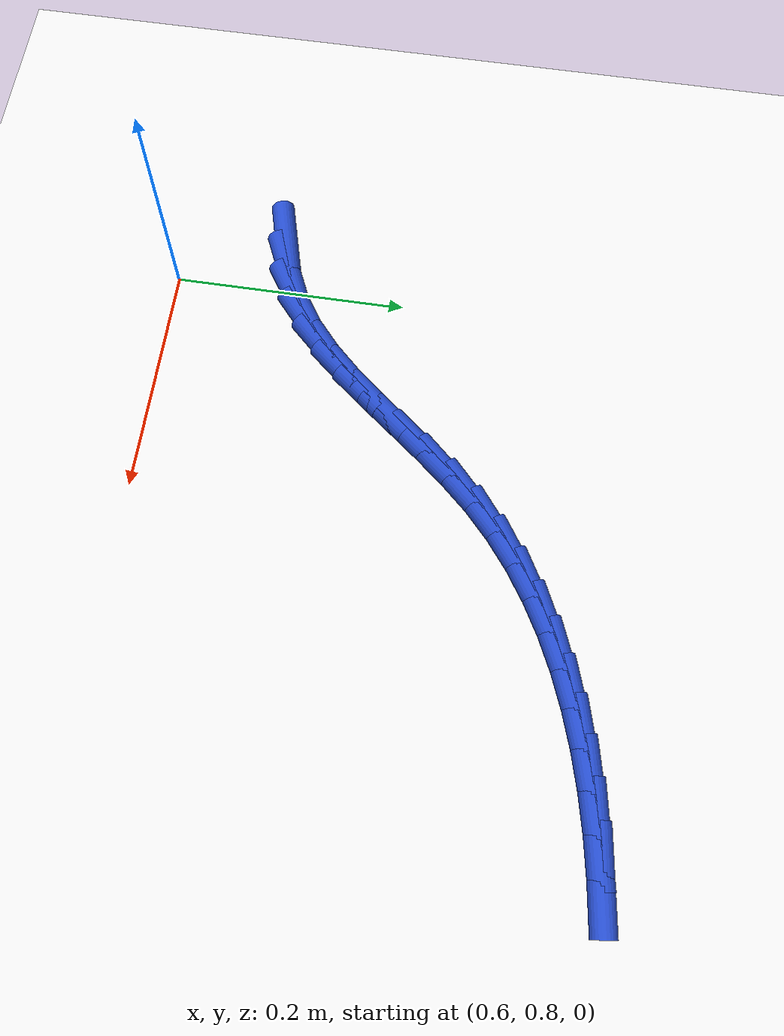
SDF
<sdf version="1.6">
 <world name="default">
  <model name="ground_plane">
   <static>1</static>
   <link name="link">
    <collision name="collision">
     <geometry><plane><normal>0 0 1</normal><size>100 100</size></plane></geometry>
     <surface><friction><ode><mu>100</mu><mu2>50</mu2></ode></friction></surface>
    </collision>
    <visual name="visual">
     <cast_shadows>0</cast_shadows>
     <geometry><plane><normal>0 0 1</normal><size>100 100</size></plane></geometry>
     <material>
      <script><uri>file://media/materials/scripts/gazebo.material</uri><name>Gazebo/WhiteGlow</name></script>
     </material>
    </visual>
   </link>
  </model>
  <model name="line">
   <link name="link_38">
    <pose>0.5573159056006951 0.8898360443929524 0.01 0 1.57 0.25675725050288645</pose>
    <collision name="collision">
     <geometry><cylinder><radius>0.01</radius><length>0.08</length></cylinder></geometry>
    </collision>
    <visual name="visual">
     <material>
      <script><name>Gazebo/Blue</name><uri>file://media/materials/scripts/gazebo.material</uri></script>
     </material>
     <geometry><cylinder><radius>0.01</radius><length>0.08</length></cylinder></geometry>
    </visual>
   </link>
   <link name="link_39">
    <pose>0.586419178341366 0.8974771753452274 0.01 0 1.57 0.4152905521539522</pose>
    <collision name="collision">
     <geometry><cylinder><radius>0.01</radius><length>0.08</length></cylinder></geometry>
    </collision>
    <visual name="visual">
     <material>
      <script><name>Gazebo/Blue</name><uri>file://media/materials/scripts/gazebo.material</uri></script>
     </material>
     <geometry><cylinder><radius>0.01</radius><length>0.08</length></cylinder></geometry>
    </visual>
   </link>
   <link name="link_40">
    <pose>0.6130014569415652 0.909198251509453 0.01 0 1.57 0.5766440587714</pose>
    <collision name="collision">
     <geometry><cylinder><radius>0.01</radius><length>0.08</length></cylinder></geometry>
    </collision>
    <visual name="visual">
     <material>
      <script><name>Gazebo/Blue</name><uri>file://media/materials/scripts/gazebo.material</uri></script>
     </material>
     <geometry><cylinder><radius>0.01</radius><length>0.08</length></cylinder></geometry>
    </visual>
   </link>
   <link name="link_41">
    <pose>0.6371098892201381 0.9248779537045021 0.01 0 1.57 0.7063062705090236</pose>
    <collision name="collision">
     <geometry><cylinder><radius>0.01</radius><length>0.08</length></cylinder></geometry>
    </collision>
    <visual name="visual">
     <material>
      <script><name>Gazebo/Blue</name><uri>file://media/materials/scripts/gazebo.material</uri></script>
     </material>
     <geometry><cylinder><radius>0.01</radius><length>0.08</length></cylinder></geometry>
    </visual>
   </link>
   <link name="link_42">
    <pose>0.6592440332665317 0.9437611751025716 0.01 0 1.57 0.8013067904103504</pose>
    <collision name="collision">
     <geometry><cylinder><radius>0.01</radius><length>0.08</length></cylinder></geometry>
    </collision>
    <visual name="visual">
     <material>
      <script><name>Gazebo/Blue</name><uri>file://media/materials/scripts/gazebo.material</uri></script>
     </material>
     <geometry><cylinder><radius>0.01</radius><length>0.08</length></cylinder></geometry>
    </visual>
   </link>
   <link name="link_43">
    <pose>0.6799051776078241 0.965090384682453 0.01 0 1.57 0.8631725897219779</pose>
    <collision name="collision">
     <geometry><cylinder><radius>0.01</radius><length>0.08</length></cylinder></geometry>
    </collision>
    <visual name="visual">
     <material>
      <script><name>Gazebo/Blue</name><uri>file://media/materials/scripts/gazebo.material</uri></script>
     </material>
     <geometry><cylinder><radius>0.01</radius><length>0.08</length></cylinder></geometry>
    </visual>
   </link>
   <link name="link_44">
    <pose>0.6995946107710933 0.9881080514229378 0.01 0 1.57 0.8945261285083662</pose>
    <collision name="collision">
     <geometry><cylinder><radius>0.01</radius><length>0.08</length></cylinder></geometry>
    </collision>
    <visual name="visual">
     <material>
      <script><name>Gazebo/Blue</name><uri>file://media/materials/scripts/gazebo.material</uri></script>
     </material>
     <geometry><cylinder><radius>0.01</radius><length>0.08</length></cylinder></geometry>
    </visual>
   </link>
   <link name="link_45">
    <pose>0.7188136212834179 1.012056644302818 0.01 0 1.57 0.8972626645847869</pose>
    <collision name="collision">
     <geometry><cylinder><radius>0.01</radius><length>0.08</length></cylinder></geometry>
    </collision>
    <visual name="visual">
     <material>
      <script><name>Gazebo/Blue</name><uri>file://media/materials/scripts/gazebo.material</uri></script>
     </material>
     <geometry><cylinder><radius>0.01</radius><length>0.08</length></cylinder></geometry>
    </visual>
   </link>
   <link name="link_46">
    <pose>0.7380634976718757 1.0361786323008855 0.01 0 1.57 0.8718816124382054</pose>
    <collision name="collision">
     <geometry><cylinder><radius>0.01</radius><length>0.08</length></cylinder></geometry>
    </collision>
    <visual name="visual">
     <material>
      <script><name>Gazebo/Blue</name><uri>file://media/materials/scripts/gazebo.material</uri></script>
     </material>
     <geometry><cylinder><radius>0.01</radius><length>0.08</length></cylinder></geometry>
    </visual>
   </link>
   <link name="link_47">
    <pose>0.7578455284635457 1.0597164843959321 0.01 0 1.57 0.8174880087761471</pose>
    <collision name="collision">
     <geometry><cylinder><radius>0.01</radius><length>0.08</length></cylinder></geometry>
    </collision>
    <visual name="visual">
     <material>
      <script><name>Gazebo/Blue</name><uri>file://media/materials/scripts/gazebo.material</uri></script>
     </material>
     <geometry><cylinder><radius>0.01</radius><length>0.08</length></cylinder></geometry>
    </visual>
   </link>
   <link name="link_48">
    <pose>0.7786610021855057 1.0819126695667496 0.01 0 1.57 0.7368810352955288</pose>
    <collision name="collision">
     <geometry><cylinder><radius>0.01</radius><length>0.08</length></cylinder></geometry>
    </collision>
    <visual name="visual">
     <material>
      <script><name>Gazebo/Blue</name><uri>file://media/materials/scripts/gazebo.material</uri></script>
     </material>
     <geometry><cylinder><radius>0.01</radius><length>0.08</length></cylinder></geometry>
    </visual>
   </link>
   <link name="link_49">
    <pose>0.8009296575185593 1.1021189447791633 0.01 0 1.57 0.6525785681016388</pose>
    <collision name="collision">
     <geometry><cylinder><radius>0.01</radius><length>0.08</length></cylinder></geometry>
    </collision>
    <visual name="visual">
     <material>
      <script><name>Gazebo/Blue</name><uri>file://media/materials/scripts/gazebo.material</uri></script>
     </material>
     <geometry><cylinder><radius>0.01</radius><length>0.08</length></cylinder></geometry>
    </visual>
   </link>
   <link name="link_50">
    <pose>0.8246517210558207 1.1202492707761358 0.01 0 1.57 0.5727690395097536</pose>
    <collision name="collision">
     <geometry><cylinder><radius>0.01</radius><length>0.08</length></cylinder></geometry>
    </collision>
    <visual name="visual">
     <material>
      <script><name>Gazebo/Blue</name><uri>file://media/materials/scripts/gazebo.material</uri></script>
     </material>
     <geometry><cylinder><radius>0.01</radius><length>0.08</length></cylinder></geometry>
    </visual>
   </link>
   <link name="link_51">
    <pose>0.8496929009402826 1.136397881486958 0.01 0 1.57 0.4980572703767897</pose>
    <collision name="collision">
     <geometry><cylinder><radius>0.01</radius><length>0.08</length></cylinder></geometry>
    </collision>
    <visual name="visual">
     <material>
      <script><name>Gazebo/Blue</name><uri>file://media/materials/scripts/gazebo.material</uri></script>
     </material>
     <geometry><cylinder><radius>0.01</radius><length>0.08</length></cylinder></geometry>
    </visual>
   </link>
   <link name="link_52">
    <pose>0.8759188435826526 1.1506590935706593 0.01 0 1.57 0.42874590464454415</pose>
    <collision name="collision">
     <geometry><cylinder><radius>0.01</radius><length>0.08</length></cylinder></geometry>
    </collision>
    <visual name="visual">
     <material>
      <script><name>Gazebo/Blue</name><uri>file://media/materials/scripts/gazebo.material</uri></script>
     </material>
     <geometry><cylinder><radius>0.01</radius><length>0.08</length></cylinder></geometry>
    </visual>
   </link>
   <link name="link_53">
    <pose>0.9031951953936375 1.1631272236862666 0.01 0 1.57 0.3648893159389845</pose>
    <collision name="collision">
     <geometry><cylinder><radius>0.01</radius><length>0.08</length></cylinder></geometry>
    </collision>
    <visual name="visual">
     <material>
      <script><name>Gazebo/Blue</name><uri>file://media/materials/scripts/gazebo.material</uri></script>
     </material>
     <geometry><cylinder><radius>0.01</radius><length>0.08</length></cylinder></geometry>
    </visual>
   </link>
   <link name="link_54">
    <pose>0.9313876027839454 1.1738965884928092 0.01 0 1.57 0.3063557530333242</pose>
    <collision name="collision">
     <geometry><cylinder><radius>0.01</radius><length>0.08</length></cylinder></geometry>
    </collision>
    <visual name="visual">
     <material>
      <script><name>Gazebo/Blue</name><uri>file://media/materials/scripts/gazebo.material</uri></script>
     </material>
     <geometry><cylinder><radius>0.01</radius><length>0.08</length></cylinder></geometry>
    </visual>
   </link>
   <link name="link_55">
    <pose>0.9603617121642831 1.1830615046493143 0.01 0 1.57 0.25288775787532736</pose>
    <collision name="collision">
     <geometry><cylinder><radius>0.01</radius><length>0.08</length></cylinder></geometry>
    </collision>
    <visual name="visual">
     <material>
      <script><name>Gazebo/Blue</name><uri>file://media/materials/scripts/gazebo.material</uri></script>
     </material>
     <geometry><cylinder><radius>0.01</radius><length>0.08</length></cylinder></geometry>
    </visual>
   </link>
   <link name="link_56">
    <pose>0.9899831699453584 1.1907162888148093 0.01 0 1.57 0.20415336437988826</pose>
    <collision name="collision">
     <geometry><cylinder><radius>0.01</radius><length>0.08</length></cylinder></geometry>
    </collision>
    <visual name="visual">
     <material>
      <script><name>Gazebo/Blue</name><uri>file://media/materials/scripts/gazebo.material</uri></script>
     </material>
     <geometry><cylinder><radius>0.01</radius><length>0.08</length></cylinder></geometry>
    </visual>
   </link>
   <link name="link_57">
    <pose>1.0201176225378776 1.1969552576483231 0.01 0 1.57 0.15978546220421058</pose>
    <collision name="collision">
     <geometry><cylinder><radius>0.01</radius><length>0.08</length></cylinder></geometry>
    </collision>
    <visual name="visual">
     <material>
      <script><name>Gazebo/Blue</name><uri>file://media/materials/scripts/gazebo.material</uri></script>
     </material>
     <geometry><cylinder><radius>0.01</radius><length>0.08</length></cylinder></geometry>
    </visual>
   </link>
   <link name="link_58">
    <pose>1.0506307163525497 1.2018727278088837 0.01 0 1.57 0.11940977143722892</pose>
    <collision name="collision">
     <geometry><cylinder><radius>0.01</radius><length>0.08</length></cylinder></geometry>
    </collision>
    <visual name="visual">
     <material>
      <script><name>Gazebo/Blue</name><uri>file://media/materials/scripts/gazebo.material</uri></script>
     </material>
     <geometry><cylinder><radius>0.01</radius><length>0.08</length></cylinder></geometry>
    </visual>
   </link>
  </model>
 </world>
</sdf>
